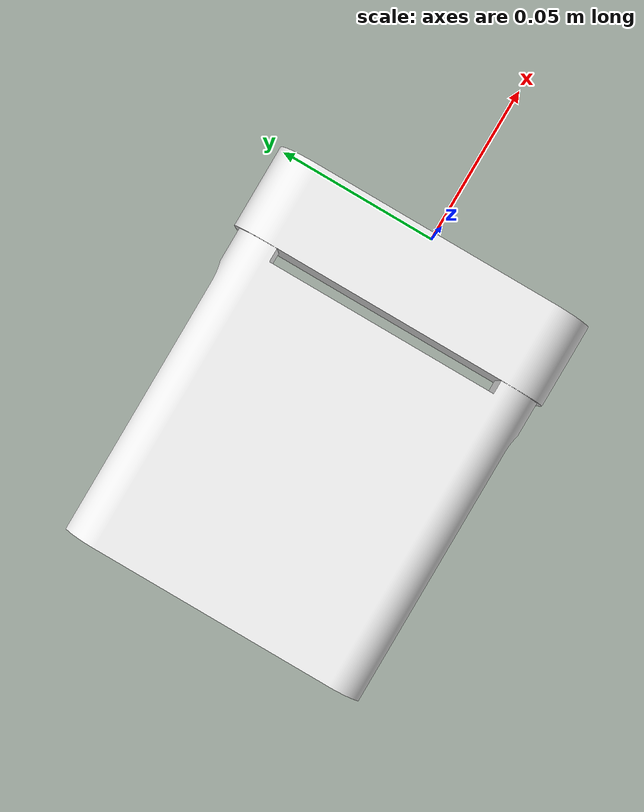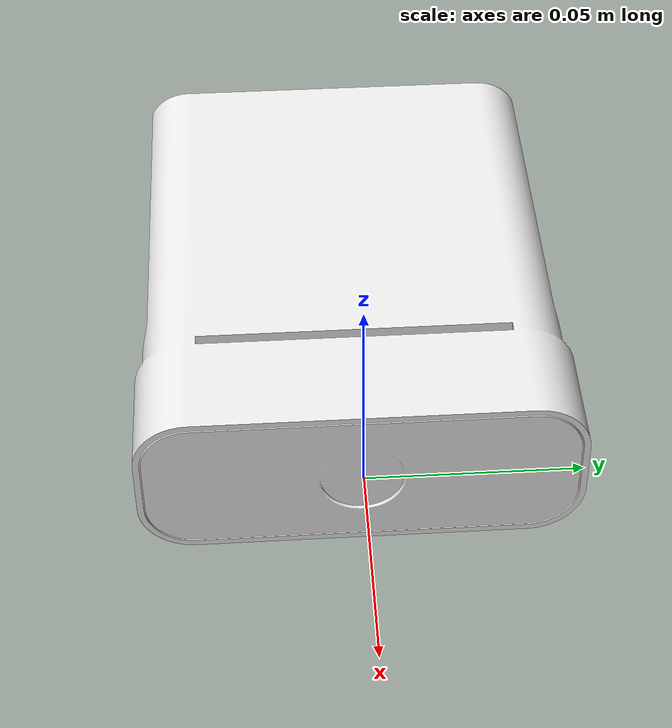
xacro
<?xml version="1.0" encoding="utf-8"?>

<robot name="kinect" xmlns:xacro="http://www.ros.org/wiki/xacro">
  <xacro:arg name="kinect_file_prefix"  default="package://robot_description/kinect"/>

  <!-- If a parent has NOT defined kinect_file_prefix as a property,
        this sets it from the arg; otherwise the parent's property value stays. -->
  <xacro:property name="kinect_file_prefix"  value="$(arg kinect_file_prefix)"/>

  <link name="camera_body">
    <visual>
      <origin rpy="0 3.1416 0"  xyz=".047 0.04 0.0115"/>
      <geometry>
        <mesh filename="${kinect_file_prefix}/meshes/kinect.stl"/>
      </geometry>
      <material name="white"/>
    </visual>
  </link>

  <link name="camera_base">
  </link>

  <link name="camera_visor">
  </link>

  <joint name="camera_base_to_body" type="fixed">
    <parent link="camera_base"/>
    <child link="camera_body"/>
    <origin rpy="0. 0. 0." xyz="-0.0757 0. 0.008"/>
  </joint>

  <joint name="camera_base_to_visor" type="fixed">
    <parent link="camera_base"/>
    <child link="camera_visor"/>
    <origin rpy="0. 0. 0." xyz="0. 0. 0."/>
  </joint>

</robot>
